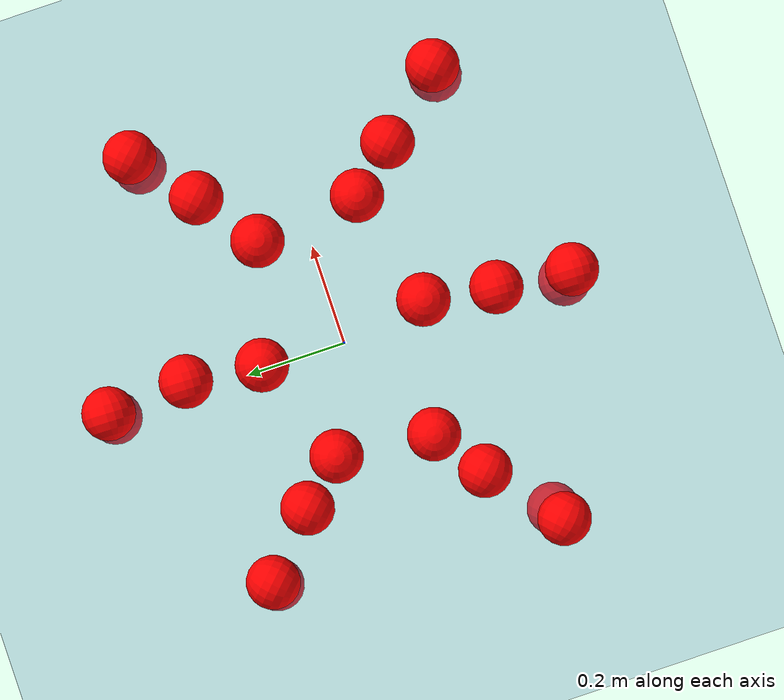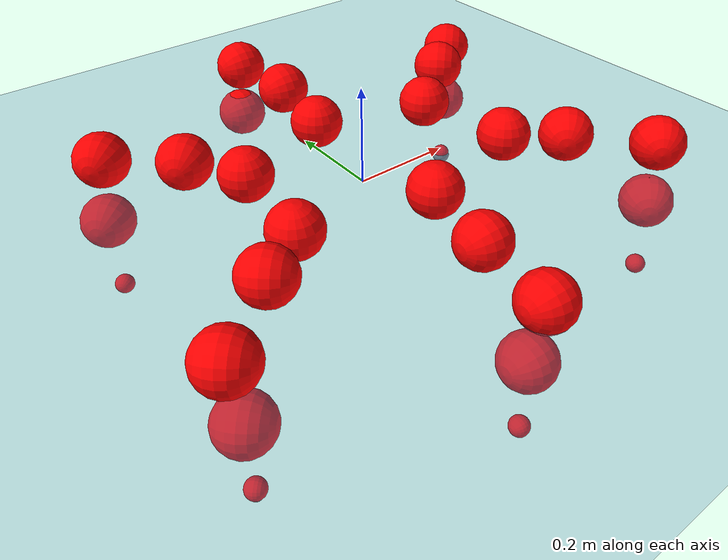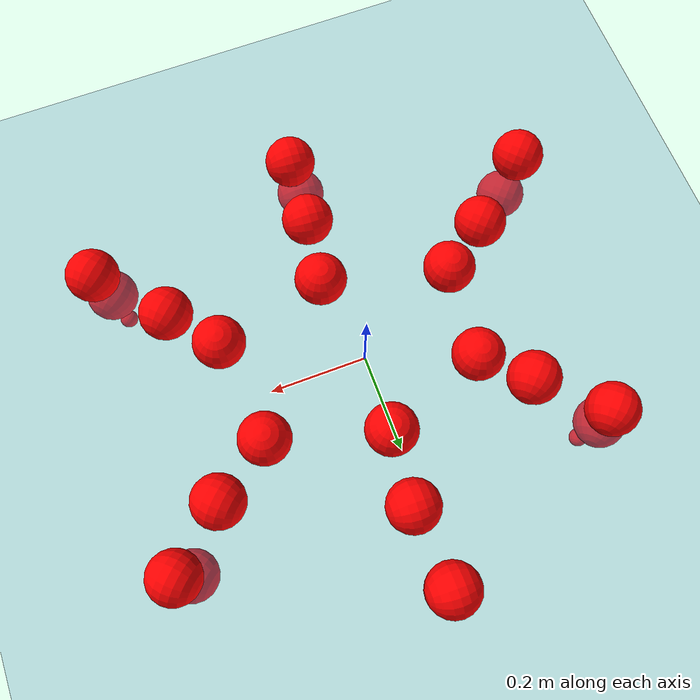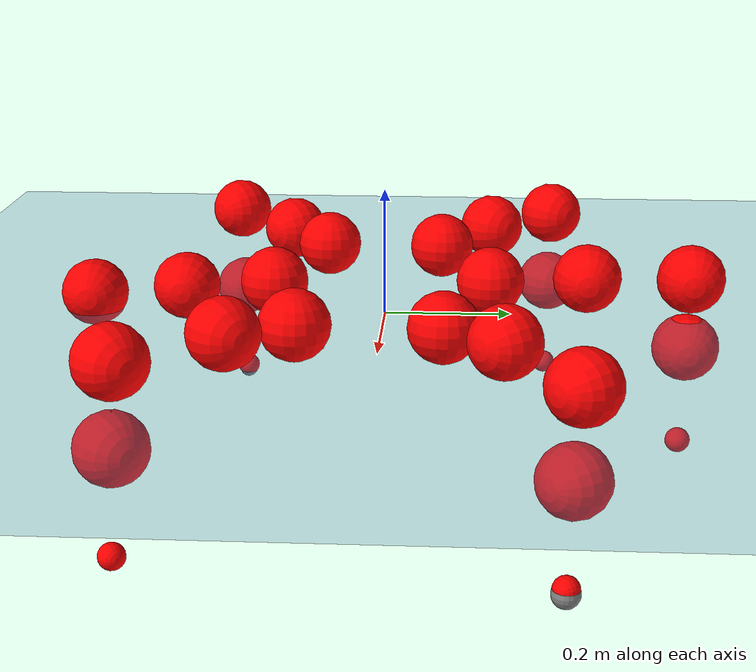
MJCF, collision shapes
<mujoco model="Golem">
  <compiler angle="radian" assetdir="assets" balanceinertia="true" inertiafromgeom="false"/>

  <option timestep="0.005" density="1.2" viscosity="2e-05"/>

  <size nkey="1"/>

  <visual>
    <quality shadowsize="8192"/>
    <map shadowclip="0.5"/>
  </visual>

  <default>
    <default class="/">
      <joint armature="0.01" damping="0.01" frictionloss="0.01"/>
      <geom contype="0" conaffinity="0" group="1" solref="-1000 -80"/>
      <site size="0.01 0.005 0.005" group="5"/>
      <general forcelimited="true" biastype="affine" gainprm="25" biasprm="0 -25 -0.5"/>
      <default class="visual">
        <geom type="mesh" group="2"/>
      </default>
      <default class="collision">
        <geom group="3"/>
      </default>
      <default class="foot">
        <geom size="0.01 0 0" condim="6" group="4" priority="1" solimp="0.015 1 0.01"/>
      </default>
      <default class="reward_collision_sphere">
        <geom group="5" rgba="1 0 0 1"/>
      </default>
    </default>
  </default>

  <asset>
    <texture type="skybox" colorspace="auto" name="//unnamed_texture_0" builtin="gradient" rgb1="0.95 0.95 0.95" rgb2="0.95 0.95 0.95" width="100" height="600"/>
    <texture type="2d" colorspace="auto" name="texplane" builtin="checker" rgb1="0.345 0.575 0.748" rgb2="0.345 0.575 0.748" markrgb="1 1 1" width="512" height="512"/>
    <material name="MatPlane" class="/" texture="texplane" texuniform="true" texrepeat="2 2" specular="0.9"/>
    <mesh name="body" class="/" file="body.stl" scale="0.001 0.001 0.001"/>
    <mesh name="coxa" class="/" file="coxa.stl" scale="0.001 0.001 0.001"/>
    <mesh name="femur" class="/" file="femur.stl" scale="0.001 0.001 0.001"/>
    <mesh name="tibia" class="/" file="tibia.stl" scale="0.001 0.001 0.001"/>
    <mesh name="tarsus" class="/" file="tarsus.stl" scale="0.001 0.001 0.001"/>
  </asset>

  <worldbody>
    <geom name="floor" class="/" size="100 100 0.125" type="plane" group="0" material="MatPlane"/>
    <light name="toplight_shadow" class="/" pos="0 0 5" dir="0.0990148 0.0990148 -0.990148" type="directional" ambient="0.04 0.04 0.04" diffuse="0.55 0.55 0.55" specular="0.12 0.12 0.12"/>
    <light name="toplight_fill" class="/" pos="0 0 5" dir="0.0990148 0.0990148 -0.990148" type="directional" castshadow="false" ambient="0.04 0.04 0.04" diffuse="0.3 0.3 0.3" specular="0.08 0.08 0.08"/>
    <body name="trunk" pos="0.0151848 -0.00325704 -0.00505935" quat="0.999957 -0.0056988 -0.00192739 -0.00709258">
      <inertial pos="0.00789254 -0.0197715 -0.0184374" quat="0.997899 -0.022711 -0.0200149 -0.0572798" mass="9.3249" diaginertia="0.0798256 0.0628443 0.0122782"/>
      <joint name="//unnamed_joint_0" type="free"/>
      <geom name="//unnamed_geom_1" class="/" pos="0 0 0.0655693" quat="1 0 0 0" type="mesh" rgba="0.9 0.9 0.9 1" mesh="body"/>
      <site name="imu" class="/" pos="0.212574 -0.0832496 0.164063" size="0.0133508"/>
      <camera name="track" class="/" pos="0 -2.98541 0" quat="0.707107 0.707107 0 0" mode="trackcom"/>
      <camera name="ego_camera" class="/" pos="0.193441 0 0.102452" quat="-0.5 -0.5 0.5 0.5"/>
      <body name="coxa_RR" pos="-0.27011 -0.140748 0.0566621" quat="0.382273 0.00626351 -0.00587055 -0.92401">
        <inertial pos="-0.0140385 -0.0114546 -0.0118714" quat="0.995004 0.015122 -0.0971073 -0.0175544" mass="0.280763" diaginertia="0.0582707 0.0500985 0.00982877"/>
        <joint name="coxa_joint_RR" class="/" pos="0 0 0" axis="0.0140454 -0.00888754 -0.999862" stiffness="0.00275853" range="-3.11475 3.53633" armature="0.000279307" damping="0" frictionloss="0.0151182"/>
        <geom name="//unnamed_geom_2" class="/" type="mesh" rgba="0.2 0.2 0.2 1" mesh="coxa"/>
        <geom name="//unnamed_geom_3" class="reward_collision_sphere" size="0.0534031" pos="-0.0446401 0 0"/>
        <body name="femur_RR" pos="0.0768673 -0.0175062 0.00166275" quat="0.494113 -0.501464 0.501698 0.502679">
          <inertial pos="-0.0180414 -0.0113115 0.00403789" quat="0.996138 0.0773391 -0.0265253 0.0320021" mass="0.49468" diaginertia="0.0746852 0.0762148 0.0104372"/>
          <joint name="femur_joint_RR" class="/" pos="0 0 0" axis="-0.0138427 0.00986245 -0.999856" range="-3.40474 3.41484" armature="0.0122069" damping="0.0960957" frictionloss="0.00583508"/>
          <geom name="//unnamed_geom_4" class="/" type="mesh" rgba="0.9 0.9 0.9 1" mesh="femur"/>
          <geom name="//unnamed_geom_5" class="reward_collision_sphere" size="0.0534031"/>
          <body name="tibia_RR" pos="-0.00231196 -0.180178 -0.0137632" quat="0.0032445 0.99998 -0.00482046 -0.00259274">
            <inertial pos="0.015443 -0.00601985 -0.00534381" quat="0.998372 0.0474705 0.0145746 -0.0280632" mass="0.340889" diaginertia="0.0599312 0.0757009 0.00865506"/>
            <joint name="tibia_joint_RR" class="/" pos="0 0 0" axis="0.0160336 -0.0806336 0.996615" range="-2.92011 3.22081" armature="0.0126943" damping="0.00307017" frictionloss="0.0106645"/>
            <geom name="//unnamed_geom_6" class="/" type="mesh" rgba="0.2 0.2 0.2 1" mesh="tibia"/>
            <geom name="//unnamed_geom_7" class="reward_collision_sphere" size="0.0534031"/>
            <body name="tarsus_RR" pos="0.147306 -0.0146558 -0.00506687" quat="0.999977 -0.00395108 -0.0051968 -0.00178903">
              <inertial pos="0.0864336 0.00721367 0.011411" quat="0.485881 0.503409 0.506918 0.503521" mass="0.368345" diaginertia="0.0617806 0.0611354 0.00818279"/>
              <joint name="tarsus_joint_RR" class="/" pos="0 0 0" axis="0.0370355 0.010621 0.999258" range="-3.10564 3.15601" armature="0.00922459" damping="0" frictionloss="0.0240666"/>
              <geom name="//unnamed_geom_8" class="/" type="mesh" rgba="0.9 0.9 0.9 1" mesh="tarsus"/>
              <geom name="foot_1" class="foot" size="0.016691" pos="0.166657 0 0" quat="0 -0.707107 0 0.707107"/>
              <geom name="//unnamed_geom_10" class="reward_collision_sphere" size="0.0534031"/>
              <geom name="//unnamed_geom_11" class="reward_collision_sphere" size="0.0200262" pos="0.159961 0 0"/>
              <site name="foot_1" class="foot" pos="0.166657 0 0" quat="0 -0.707107 0 0.707107" size="0.0133508"/>
            </body>
          </body>
        </body>
      </body>
      <body name="coxa_RM" pos="0.0180311 -0.214518 0.0619625" quat="0.704928 0.00322007 0.00253364 -0.709267">
        <inertial pos="0.0176383 -0.004972 0.00827097" quat="0.999794 0.0128928 0.0155622 0.00204878" mass="0.356884" diaginertia="0.0649223 0.0486087 0.00826218"/>
        <joint name="coxa_joint_RM" class="/" pos="0 0 0" axis="-0.00284504 -0.00312016 -0.999991" range="-3.45776 3.19515" armature="0.00257395" damping="0.000531955" frictionloss="0.0159512"/>
        <geom name="//unnamed_geom_12" class="/" type="mesh" rgba="0.2 0.2 0.2 1" mesh="coxa"/>
        <geom name="//unnamed_geom_13" class="reward_collision_sphere" size="0.0534031" pos="-0.0446401 0 0"/>
        <body name="femur_RM" pos="0.0997327 -0.0192367 -0.017287" quat="0.503329 -0.494635 0.501499 0.500495">
          <inertial pos="-0.00633464 0.0129601 -0.010774" quat="0.995376 -0.0688591 0.0468903 -0.0478206" mass="0.506483" diaginertia="0.104736 0.0870713 0.0156089"/>
          <joint name="femur_joint_RM" class="/" pos="0 0 0" axis="0.00238326 0.00368487 -0.99999" stiffness="0.00087214" range="-2.74877 3.32331" armature="0.0103766" damping="0" frictionloss="0.0129889"/>
          <geom name="//unnamed_geom_14" class="/" type="mesh" rgba="0.9 0.9 0.9 1" mesh="femur"/>
          <geom name="//unnamed_geom_15" class="reward_collision_sphere" size="0.0534031"/>
          <body name="tibia_RM" pos="0.0171971 -0.153813 -0.00955848" quat="0.00165549 0.999951 -0.00926478 0.00299308">
            <inertial pos="0.0148405 0.00020421 0.00901376" quat="0.996952 0.066219 0.00479466 0.0409704" mass="0.467364" diaginertia="0.0829237 0.0973408 0.015134"/>
            <joint name="tibia_joint_RM" class="/" pos="0 0 0" axis="-0.0445653 0.0162526 0.998874" stiffness="0.0889107" range="-3.16674 3.09425" armature="0.018061" damping="0.0783969" frictionloss="0.0193769"/>
            <geom name="//unnamed_geom_16" class="/" type="mesh" rgba="0.2 0.2 0.2 1" mesh="tibia"/>
            <geom name="//unnamed_geom_17" class="reward_collision_sphere" size="0.0534031"/>
            <body name="tarsus_RM" pos="0.129767 -0.0100421 0.0156975" quat="0.999961 0.00622556 -0.00622977 0.000787318">
              <inertial pos="0.0911636 -0.00735515 -0.000227924" quat="0.543021 0.493124 0.478883 0.482316" mass="0.475955" diaginertia="0.0703412 0.0741962 0.00809018"/>
              <joint name="tarsus_joint_RM" class="/" pos="0 0 0" axis="-0.0826076 -0.0173852 0.99643" range="-2.84417 2.74502" armature="0.0227423" damping="0" frictionloss="0.0264922"/>
              <geom name="//unnamed_geom_18" class="/" type="mesh" rgba="0.9 0.9 0.9 1" mesh="tarsus"/>
              <geom name="foot_2" class="foot" size="0.00857158" pos="0.166657 0 0" quat="0 -0.707107 0 0.707107"/>
              <geom name="//unnamed_geom_20" class="reward_collision_sphere" size="0.0534031"/>
              <geom name="//unnamed_geom_21" class="reward_collision_sphere" size="0.0200262" pos="0.159961 0 0"/>
              <site name="foot_2" class="foot" pos="0.166657 0 0" quat="0 -0.707107 0 0.707107" size="0.0133508"/>
            </body>
          </body>
        </body>
      </body>
      <body name="coxa_RF" pos="0.28256 -0.140307 0.0665327" quat="0.92122 -0.005285 -0.00147294 -0.389004">
        <inertial pos="-0.017982 -0.0182803 0.00119853" quat="0.999751 -0.00214634 -0.0200919 -0.0094509" mass="0.418198" diaginertia="0.0780891 0.0841605 0.0103812"/>
        <joint name="coxa_joint_RF" class="/" pos="0 0 0" axis="0.000175799 0.0574505 -0.998348" stiffness="0.0977494" range="-3.38004 3.50599" armature="0.0210502" damping="0" frictionloss="0.00890741"/>
        <geom name="//unnamed_geom_22" class="/" type="mesh" rgba="0.2 0.2 0.2 1" mesh="coxa"/>
        <geom name="//unnamed_geom_23" class="reward_collision_sphere" size="0.0534031" pos="-0.0446401 0 0"/>
        <body name="femur_RF" pos="0.0750496 -0.00382471 0.00964778" quat="0.50296 -0.505253 0.497237 0.494475">
          <inertial pos="-0.000913021 0.0133255 -0.0191951" quat="0.996448 0.0277915 0.0793577 -0.00458941" mass="0.485458" diaginertia="0.0926479 0.0907393 0.0171653"/>
          <joint name="femur_joint_RF" class="/" pos="0 0 0" axis="-0.0964091 0.0138641 -0.995245" range="-3.01716 3.40215" armature="0" damping="0" frictionloss="0.00292073"/>
          <geom name="//unnamed_geom_24" class="/" type="mesh" rgba="0.9 0.9 0.9 1" mesh="femur"/>
          <geom name="//unnamed_geom_25" class="reward_collision_sphere" size="0.0534031"/>
          <body name="tibia_RF" pos="0.00853312 -0.17359 -0.0067089" quat="0.00300218 0.99998 -0.0035379 -0.00432818">
            <inertial pos="0.00227535 -0.000374516 0.00391989" quat="0.996827 0.033671 -0.0233556 -0.0682362" mass="0.627204" diaginertia="0.0794646 0.084495 0.0101553"/>
            <joint name="tibia_joint_RF" class="/" pos="0 0 0" axis="-0.0236245 -0.0323273 0.999198" stiffness="0.0671248" range="-3.11296 2.77297" armature="0.00851672" damping="0.00826748" frictionloss="0.00644031"/>
            <geom name="//unnamed_geom_26" class="/" type="mesh" rgba="0.2 0.2 0.2 1" mesh="tibia"/>
            <geom name="//unnamed_geom_27" class="reward_collision_sphere" size="0.0534031"/>
            <body name="tarsus_RF" pos="0.127568 -0.00454859 0.00728567" quat="0.999953 0.00420955 0.00468722 0.00736016">
              <inertial pos="0.098947 0.000989624 0.00252153" quat="0.530085 0.513128 0.438663 0.513113" mass="0.5435" diaginertia="0.0820928 0.0925727 0.0161078"/>
              <joint name="tarsus_joint_RF" class="/" pos="0 0 0" axis="-0.044929 -0.0193725 0.998802" stiffness="0.00454813" range="-3.11102 3.24385" armature="0.0137592" damping="0" frictionloss="0.00418319"/>
              <geom name="//unnamed_geom_28" class="/" type="mesh" rgba="0.9 0.9 0.9 1" mesh="tarsus"/>
              <geom name="foot_3" class="foot" size="0.00470783" pos="0.166657 0 0" quat="0 -0.707107 0 0.707107"/>
              <geom name="//unnamed_geom_30" class="reward_collision_sphere" size="0.0534031"/>
              <geom name="//unnamed_geom_31" class="reward_collision_sphere" size="0.0200262" pos="0.159961 0 0"/>
              <site name="foot_3" class="foot" pos="0.166657 0 0" quat="0 -0.707107 0 0.707107" size="0.0133508"/>
            </body>
          </body>
        </body>
      </body>
      <body name="coxa_LR" pos="-0.253033 0.116565 0.063218" quat="0.376433 -0.00537692 -0.000146335 0.926428">
        <inertial pos="-0.000328645 0.00460828 -0.0100749" quat="0.999784 0.00542877 0.00563481 0.0192553" mass="0.517643" diaginertia="0.083647 0.0640687 0.013291"/>
        <joint name="coxa_joint_LR" class="/" pos="0 0 0" axis="-0.0618922 -0.0590344 -0.996335" stiffness="0.0561168" range="-3.46926 3.12451" armature="0.0208059" damping="0" frictionloss="0.0108239"/>
        <geom name="//unnamed_geom_32" class="/" type="mesh" rgba="0.2 0.2 0.2 1" mesh="coxa"/>
        <geom name="//unnamed_geom_33" class="reward_collision_sphere" size="0.0534031" pos="-0.0446401 0 0"/>
        <body name="femur_LR" pos="0.0703803 -0.00532771 0.0178783" quat="0.501326 -0.497117 0.497708 0.503819">
          <inertial pos="0.00210454 0.00689547 -0.0123555" quat="0.998413 -0.0148712 0.0460118 -0.0288499" mass="0.411557" diaginertia="0.0613427 0.0857865 0.00932067"/>
          <joint name="femur_joint_LR" class="/" pos="0 0 0" axis="0.0373909 0.0028861 0.999297" stiffness="0.0730632" range="-2.78583 2.78977" armature="0.0143368" damping="0.100056" frictionloss="0.0198227"/>
          <geom name="//unnamed_geom_34" class="/" type="mesh" rgba="0.9 0.9 0.9 1" mesh="femur"/>
          <geom name="//unnamed_geom_35" class="reward_collision_sphere" size="0.0534031"/>
          <body name="tibia_LR" pos="8.7121e-05 -0.158895 0.00424466" quat="-0.000939825 0.999989 -0.00438901 0.00142513">
            <inertial pos="0.0196147 0.00985838 0.0182133" quat="0.999371 0.0283807 0.0211872 -0.00199597" mass="0.471309" diaginertia="0.0756267 0.063455 0.0144841"/>
            <joint name="tibia_joint_LR" class="/" pos="0 0 0" axis="0.0016292 -0.0119899 -0.999927" stiffness="0.0683785" range="-3.50308 2.82248" armature="0.0222506" damping="0" frictionloss="0.0204548"/>
            <geom name="//unnamed_geom_36" class="/" type="mesh" rgba="0.2 0.2 0.2 1" mesh="tibia"/>
            <geom name="//unnamed_geom_37" class="reward_collision_sphere" size="0.0534031"/>
            <body name="tarsus_LR" pos="0.133245 0.0121783 -0.00961694" quat="0.999999 0.000626161 -0.00092914 0.00126217">
              <inertial pos="0.0815217 -0.00226028 -0.00954246" quat="0.485075 0.517104 0.50611 0.49108" mass="0.427112" diaginertia="0.066289 0.0474183 0.0089283"/>
              <joint name="tarsus_joint_LR" class="/" pos="0 0 0" axis="0.0191424 -0.0900348 -0.995755" range="-2.99435 3.45434" armature="0.0190243" damping="0.0536306" frictionloss="0.0028791"/>
              <geom name="//unnamed_geom_38" class="/" type="mesh" rgba="0.9 0.9 0.9 1" mesh="tarsus"/>
              <geom name="foot_4" class="foot" size="0.00842178" pos="0.166657 0 0" quat="0.707107 0 -0.707107 0"/>
              <geom name="//unnamed_geom_40" class="reward_collision_sphere" size="0.0534031"/>
              <geom name="//unnamed_geom_41" class="reward_collision_sphere" size="0.0200262" pos="0.159961 0 0"/>
              <site name="foot_4" class="foot" pos="0.166657 0 0" quat="0.707107 0 -0.707107 0" size="0.0133508"/>
            </body>
          </body>
        </body>
      </body>
      <body name="coxa_LM" pos="-0.00733674 0.214525 0.0655666" quat="0.708082 0.0046618 -0.00334445 0.706107">
        <inertial pos="-0.0181323 -0.0193329 -0.0101301" quat="0.999999 0.000299011 -0.00130489 0.000420383" mass="0.490895" diaginertia="0.0659103 0.0758558 0.0119101"/>
        <joint name="coxa_joint_LM" class="/" pos="0 0 0" axis="-0.0315353 0.0280151 -0.99911" stiffness="0.078244" range="-3.41501 3.41578" armature="0.00144423" damping="0.00967217" frictionloss="0.00432954"/>
        <geom name="//unnamed_geom_42" class="/" type="mesh" rgba="0.2 0.2 0.2 1" mesh="coxa"/>
        <geom name="//unnamed_geom_43" class="reward_collision_sphere" size="0.0534031" pos="-0.0446401 0 0"/>
        <body name="femur_LM" pos="0.106082 -0.0144423 0.0113263" quat="0.497976 -0.493126 0.504617 0.50419">
          <inertial pos="0.0144505 -0.0134522 0.0075849" quat="0.996872 0.0561104 0.000488525 0.0556565" mass="0.422895" diaginertia="0.0518928 0.077599 0.0088915"/>
          <joint name="femur_joint_LM" class="/" pos="0 0 0" axis="-0.0422579 0.0242219 0.998813" range="-3.36239 3.17061" armature="0.025873" damping="0.00724505" frictionloss="0.00962357"/>
          <geom name="//unnamed_geom_44" class="/" type="mesh" rgba="0.9 0.9 0.9 1" mesh="femur"/>
          <geom name="//unnamed_geom_45" class="reward_collision_sphere" size="0.0534031"/>
          <body name="tibia_LM" pos="-0.00107936 -0.162228 0.015243" quat="-0.00109704 0.999996 -0.00231519 -0.000768891">
            <inertial pos="-0.0100247 -0.0173767 -0.0123005" quat="0.99865 0.0259787 0.0161098 0.0419885" mass="0.491587" diaginertia="0.0845022 0.0686569 0.0100912"/>
            <joint name="tibia_joint_LM" class="/" pos="0 0 0" axis="-0.0202322 -0.0661213 -0.997606" stiffness="0.0468777" range="-2.92898 2.83414" armature="0.0139633" damping="0.0407178" frictionloss="0.0225462"/>
            <geom name="//unnamed_geom_46" class="/" type="mesh" rgba="0.2 0.2 0.2 1" mesh="tibia"/>
            <geom name="//unnamed_geom_47" class="reward_collision_sphere" size="0.0534031"/>
            <body name="tarsus_LM" pos="0.115783 0.000577887 -0.0100169" quat="0.999999 0.000852665 0.000192466 -0.00112059">
              <inertial pos="0.0968809 6.62482e-05 0.00196124" quat="0.446952 0.527267 0.497037 0.524574" mass="0.28188" diaginertia="0.048358 0.0533728 0.0107179"/>
              <joint name="tarsus_joint_LM" class="/" pos="0 0 0" axis="0.0402459 -0.0422435 -0.998296" range="-3.15811 3.43329" armature="0.0153724" damping="0" frictionloss="0.0129117"/>
              <geom name="//unnamed_geom_48" class="/" type="mesh" rgba="0.9 0.9 0.9 1" mesh="tarsus"/>
              <geom name="foot_5" class="foot" size="0.00822175" pos="0.166657 0 0" quat="0.707107 0 -0.707107 0"/>
              <geom name="//unnamed_geom_50" class="reward_collision_sphere" size="0.0534031"/>
              <geom name="//unnamed_geom_51" class="reward_collision_sphere" size="0.0200262" pos="0.159961 0 0"/>
              <site name="foot_5" class="foot" pos="0.166657 0 0" quat="0.707107 0 -0.707107 0" size="0.0133508"/>
            </body>
          </body>
        </body>
      </body>
      <body name="coxa_LF" pos="0.25828 0.135841 0.0614958" quat="0.924265 0.000961976 0.000399662 0.381751">
        <inertial pos="-0.00187343 -0.00902608 -0.000466087" quat="0.999994 0.000506856 0.00195375 0.00273981" mass="0.630906" diaginertia="0.0949737 0.0799611 0.0120207"/>
        <joint name="coxa_joint_LF" class="/" pos="0 0 0" axis="0.0196497 0.0902039 -0.995729" range="-3.25603 3.37793" armature="0.00594096" damping="0.0116904" frictionloss="0.0143868"/>
        <geom name="//unnamed_geom_52" class="/" type="mesh" rgba="0.2 0.2 0.2 1" mesh="coxa"/>
        <geom name="//unnamed_geom_53" class="reward_collision_sphere" size="0.0534031" pos="-0.0446401 0 0"/>
        <body name="femur_LF" pos="0.0990646 -0.0194604 0.0199735" quat="0.499317 -0.502565 0.496789 0.50131">
          <inertial pos="0.0168978 -0.0119402 0.00930936" quat="0.999749 -0.0146478 -0.0168045 0.0021532" mass="0.447207" diaginertia="0.0936663 0.103576 0.0122882"/>
          <joint name="femur_joint_LF" class="/" pos="0 0 0" axis="0.0651422 -0.0514532 0.996549" range="-3.1765 3.49462" armature="0.024287" damping="0.00823552" frictionloss="0.00776415"/>
          <geom name="//unnamed_geom_54" class="/" type="mesh" rgba="0.9 0.9 0.9 1" mesh="femur"/>
          <geom name="//unnamed_geom_55" class="reward_collision_sphere" size="0.0534031"/>
          <body name="tibia_LF" pos="0.0182107 -0.154042 -0.0121274" quat="-0.00315895 0.999989 0.00104723 -0.00330707">
            <inertial pos="-0.00995481 -0.0122634 -0.00704618" quat="0.995998 -0.0886694 0.00787469 -0.0080195" mass="0.481937" diaginertia="0.072254 0.0607722 0.0102071"/>
            <joint name="tibia_joint_LF" class="/" pos="0 0 0" axis="0.00932884 -0.00728751 -0.99993" stiffness="0.0243252" range="-3.21955 3.39816" armature="0.0268778" damping="0" frictionloss="0.0146885"/>
            <geom name="//unnamed_geom_56" class="/" type="mesh" rgba="0.2 0.2 0.2 1" mesh="tibia"/>
            <geom name="//unnamed_geom_57" class="reward_collision_sphere" size="0.0534031"/>
            <body name="tarsus_LF" pos="0.136831 -0.012391 -0.00506345" quat="0.999952 0.00716328 -0.00616922 -0.00274947">
              <inertial pos="0.073475 0.017415 -0.00539464" quat="0.514916 0.50428 0.499949 0.480224" mass="0.532384" diaginertia="0.0977473 0.0888222 0.0148091"/>
              <joint name="tarsus_joint_LF" class="/" pos="0 0 0" axis="0.0443321 -0.0744209 -0.996241" range="-3.47948 3.01118" armature="0.0084442" damping="0" frictionloss="0.0161674"/>
              <geom name="//unnamed_geom_58" class="/" type="mesh" rgba="0.9 0.9 0.9 1" mesh="tarsus"/>
              <geom name="foot_6" class="foot" size="0.021313" pos="0.166657 0 0" quat="0.707107 0 -0.707107 0"/>
              <geom name="//unnamed_geom_60" class="reward_collision_sphere" size="0.0534031"/>
              <geom name="//unnamed_geom_61" class="reward_collision_sphere" size="0.0200262" pos="0.159961 0 0"/>
              <site name="foot_6" class="foot" pos="0.166657 0 0" quat="0.707107 0 -0.707107 0" size="0.0133508"/>
            </body>
          </body>
        </body>
      </body>
    </body>
  </worldbody>

  <contact>
    <pair class="/" geom1="floor" geom2="foot_1" name="//unnamed_contact_0"/>
    <pair class="/" geom1="floor" geom2="foot_2" name="//unnamed_contact_1"/>
    <pair class="/" geom1="floor" geom2="foot_3" name="//unnamed_contact_2"/>
    <pair class="/" geom1="floor" geom2="foot_4" name="//unnamed_contact_3"/>
    <pair class="/" geom1="floor" geom2="foot_5" name="//unnamed_contact_4"/>
    <pair class="/" geom1="floor" geom2="foot_6" name="//unnamed_contact_5"/>
  </contact>

  <actuator>
    <general name="coxa_joint_RR" class="/" joint="coxa_joint_RR" forcerange="-7.53837 7.53837" gainprm="21.5387" biasprm="0 -21.5387 -0.874438"/>
    <general name="femur_joint_RR" class="/" joint="femur_joint_RR" forcerange="-10.105 10.105" gainprm="21.5387" biasprm="0 -21.5387 -0.874438"/>
    <general name="tibia_joint_RR" class="/" joint="tibia_joint_RR" forcerange="-7.99544 7.99544" gainprm="21.5387" biasprm="0 -21.5387 -0.874438"/>
    <general name="tarsus_joint_RR" class="/" joint="tarsus_joint_RR" forcerange="-13.1253 13.1253" gainprm="21.5387" biasprm="0 -21.5387 -0.874438"/>
    <general name="coxa_joint_RM" class="/" joint="coxa_joint_RM" forcerange="-13.3004 13.3004" gainprm="21.5387" biasprm="0 -21.5387 -0.874438"/>
    <general name="femur_joint_RM" class="/" joint="femur_joint_RM" forcerange="-15.545 15.545" gainprm="21.5387" biasprm="0 -21.5387 -0.874438"/>
    <general name="tibia_joint_RM" class="/" joint="tibia_joint_RM" forcerange="-9.29515 9.29515" gainprm="21.5387" biasprm="0 -21.5387 -0.874438"/>
    <general name="tarsus_joint_RM" class="/" joint="tarsus_joint_RM" forcerange="-5.92238 5.92238" gainprm="21.5387" biasprm="0 -21.5387 -0.874438"/>
    <general name="coxa_joint_RF" class="/" joint="coxa_joint_RF" forcerange="-15.7567 15.7567" gainprm="21.5387" biasprm="0 -21.5387 -0.874438"/>
    <general name="femur_joint_RF" class="/" joint="femur_joint_RF" forcerange="-15.3643 15.3643" gainprm="21.5387" biasprm="0 -21.5387 -0.874438"/>
    <general name="tibia_joint_RF" class="/" joint="tibia_joint_RF" forcerange="-4.29013 4.29013" gainprm="21.5387" biasprm="0 -21.5387 -0.874438"/>
    <general name="tarsus_joint_RF" class="/" joint="tarsus_joint_RF" forcerange="-5.52723 5.52723" gainprm="21.5387" biasprm="0 -21.5387 -0.874438"/>
    <general name="coxa_joint_LR" class="/" joint="coxa_joint_LR" forcerange="-12.0861 12.0861" gainprm="21.5387" biasprm="0 -21.5387 -0.874438"/>
    <general name="femur_joint_LR" class="/" joint="femur_joint_LR" forcerange="-14.4356 14.4356" gainprm="21.5387" biasprm="0 -21.5387 -0.874438"/>
    <general name="tibia_joint_LR" class="/" joint="tibia_joint_LR" forcerange="-16.4735 16.4735" gainprm="21.5387" biasprm="0 -21.5387 -0.874438"/>
    <general name="tarsus_joint_LR" class="/" joint="tarsus_joint_LR" forcerange="-2.7455 2.7455" gainprm="21.5387" biasprm="0 -21.5387 -0.874438"/>
    <general name="coxa_joint_LM" class="/" joint="coxa_joint_LM" forcerange="-5.20222 5.20222" gainprm="21.5387" biasprm="0 -21.5387 -0.874438"/>
    <general name="femur_joint_LM" class="/" joint="femur_joint_LM" forcerange="-8.6205 8.6205" gainprm="21.5387" biasprm="0 -21.5387 -0.874438"/>
    <general name="tibia_joint_LM" class="/" joint="tibia_joint_LM" forcerange="-10.4895 10.4895" gainprm="21.5387" biasprm="0 -21.5387 -0.874438"/>
    <general name="tarsus_joint_LM" class="/" joint="tarsus_joint_LM" forcerange="-13.8164 13.8164" gainprm="21.5387" biasprm="0 -21.5387 -0.874438"/>
    <general name="coxa_joint_LF" class="/" joint="coxa_joint_LF" forcerange="-10.5752 10.5752" gainprm="21.5387" biasprm="0 -21.5387 -0.874438"/>
    <general name="femur_joint_LF" class="/" joint="femur_joint_LF" forcerange="-10.0185 10.0185" gainprm="21.5387" biasprm="0 -21.5387 -0.874438"/>
    <general name="tibia_joint_LF" class="/" joint="tibia_joint_LF" forcerange="-5.93433 5.93433" gainprm="21.5387" biasprm="0 -21.5387 -0.874438"/>
    <general name="tarsus_joint_LF" class="/" joint="tarsus_joint_LF" forcerange="-11.9409 11.9409" gainprm="21.5387" biasprm="0 -21.5387 -0.874438"/>
  </actuator>

  <sensor>
    <gyro site="imu" name="imu_angular_velocity"/>
    <velocimeter site="imu" name="imu_linear_velocity"/>
    <framelinvel objtype="site" objname="foot_1" name="foot_1_global_linear_velocity"/>
    <framelinvel objtype="site" objname="foot_2" name="foot_2_global_linear_velocity"/>
    <framelinvel objtype="site" objname="foot_3" name="foot_3_global_linear_velocity"/>
    <framelinvel objtype="site" objname="foot_4" name="foot_4_global_linear_velocity"/>
    <framelinvel objtype="site" objname="foot_5" name="foot_5_global_linear_velocity"/>
    <framelinvel objtype="site" objname="foot_6" name="foot_6_global_linear_velocity"/>
  </sensor>

  <keyframe>
    <key name="home" qpos="0 0 0.1457 1 0 0 0 0 0 0 0 0 0 0 0 0 0 0 0 0 0 0 0 0 0 0 0 0 0 0 0"/>
  </keyframe>
</mujoco>
